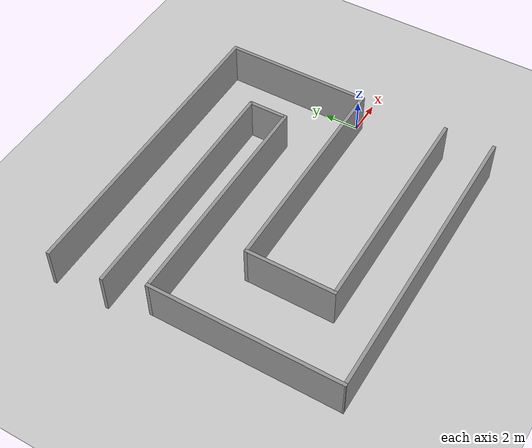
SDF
<sdf version="1.4">
 <world name="default">
  <light name="sun" type="directional">
   <pose>0 0 10 0 -0 0</pose>
   <diffuse>0.8 0.8 0.8 1</diffuse>
   <specular>0.2 0.2 0.2 1</specular>
   <attenuation>
    <range>1000</range>
    <constant>0.9</constant>
    <linear>0.01</linear>
    <quadratic>0.001</quadratic>
   </attenuation>
   <direction>-0.5 0.1 -0.9</direction>
  </light>
  <model name="ground_plane">
   <static>1</static>
   <link name="link">
    <collision name="collision">
     <geometry><plane><normal>0 0 1</normal><size>100 100</size></plane></geometry>
     <surface><friction><ode><mu>100</mu><mu2>50</mu2></ode></friction></surface>
    </collision>
    <visual name="visual">
     <cast_shadows>0</cast_shadows>
     <geometry><plane><normal>0 0 1</normal><size>100 100</size></plane></geometry>
     <material>
      <script><uri>file://media/materials/scripts/gazebo.material</uri><name>Gazebo/Grey</name></script>
     </material>
    </visual>
    <velocity_decay><linear>0</linear><angular>0</angular></velocity_decay>
   </link>
  </model>
  <physics type="ode">
   <max_step_size>0.001</max_step_size>
   <real_time_factor>1</real_time_factor>
   <real_time_update_rate>1000</real_time_update_rate>
   <gravity>0 0 -9.8</gravity>
  </physics>
  <scene><ambient>0.4 0.4 0.4 1</ambient><background>0.7 0.7 0.7 1</background><shadows>1</shadows></scene>
  <spherical_coordinates>
   <surface_model>EARTH_WGS84</surface_model>
   <latitude_deg>0</latitude_deg>
   <longitude_deg>0</longitude_deg>
   <elevation>0</elevation>
   <heading_deg>0</heading_deg>
  </spherical_coordinates>
  <model name="s_v3">
   <link name="Wall_0">
    <collision name="Wall_0_Collision">
     <geometry><box><size>17.7894 0.2 2.5</size></box></geometry>
     <pose>0 0 1.25 0 -0 0</pose>
    </collision>
    <visual name="Wall_0_Visual">
     <pose>0 0 1.25 0 -0 0</pose>
     <geometry><box><size>17.7894 0.2 2.5</size></box></geometry>
     <material>
      <script><uri>file://media/materials/scripts/gazebo.material</uri><name>Gazebo/Grey</name></script>
     </material>
    </visual>
    <velocity_decay><linear>0</linear><angular>0</angular></velocity_decay>
    <pose>-8.7366 8.26693 0 0 -0 0</pose>
   </link>
   <link name="Wall_1">
    <collision name="Wall_1_Collision">
     <geometry><box><size>8.6429 0.2 2.5</size></box></geometry>
     <pose>0 0 1.25 0 -0 0</pose>
    </collision>
    <visual name="Wall_1_Visual">
     <pose>0 0 1.25 0 -0 0</pose>
     <geometry><box><size>8.6429 0.2 2.5</size></box></geometry>
     <material>
      <script><uri>file://media/materials/scripts/gazebo.material</uri><name>Gazebo/Grey</name></script>
     </material>
    </visual>
    <velocity_decay><linear>0</linear><angular>0</angular></velocity_decay>
    <pose>0.058094 4.04548 0 0 0 -1.5708</pose>
   </link>
   <link name="Wall_10">
    <collision name="Wall_10_Collision">
     <geometry><box><size>17.1727 0.2 2.5</size></box></geometry>
     <pose>0 0 1.25 0 -0 0</pose>
    </collision>
    <visual name="Wall_10_Visual">
     <pose>0 0 1.25 0 -0 0</pose>
     <geometry><box><size>17.1727 0.2 2.5</size></box></geometry>
     <material>
      <script><uri>file://media/materials/scripts/gazebo.material</uri><name>Gazebo/Grey</name></script>
     </material>
    </visual>
    <velocity_decay><linear>0</linear><angular>0</angular></velocity_decay>
    <pose>-8.18353 -8.04802 0 0 0 -0.002384</pose>
   </link>
   <link name="Wall_2">
    <collision name="Wall_2_Collision">
     <geometry><box><size>12.7114 0.2 2.5</size></box></geometry>
     <pose>0 0 1.25 0 -0 0</pose>
    </collision>
    <visual name="Wall_2_Visual">
     <pose>0 0 1.25 0 -0 0</pose>
     <geometry><box><size>12.7114 0.2 2.5</size></box></geometry>
     <material>
      <script><uri>file://media/materials/scripts/gazebo.material</uri><name>Gazebo/Grey</name></script>
     </material>
    </visual>
    <velocity_decay><linear>0</linear><angular>0</angular></velocity_decay>
    <pose>-6.19761 -0.17597 0 0 -0 3.14159</pose>
   </link>
   <link name="Wall_3">
    <collision name="Wall_3_Collision">
     <geometry><box><size>5.24739 0.2 2.5</size></box></geometry>
     <pose>0 0 1.25 0 -0 0</pose>
    </collision>
    <visual name="Wall_3_Visual">
     <pose>0 0 1.25 0 -0 0</pose>
     <geometry><box><size>5.24739 0.2 2.5</size></box></geometry>
     <material>
      <script><uri>file://media/materials/scripts/gazebo.material</uri><name>Gazebo/Grey</name></script>
     </material>
    </visual>
    <velocity_decay><linear>0</linear><angular>0</angular></velocity_decay>
    <pose>-12.4533 -2.69966 0 0 0 -1.5708</pose>
   </link>
   <link name="Wall_4">
    <collision name="Wall_4_Collision">
     <geometry><box><size>12.8949 0.2 2.5</size></box></geometry>
     <pose>0 0 1.25 0 -0 0</pose>
    </collision>
    <visual name="Wall_4_Visual">
     <pose>0 0 1.25 0 -0 0</pose>
     <geometry><box><size>12.8949 0.2 2.5</size></box></geometry>
     <material>
      <script><uri>file://media/materials/scripts/gazebo.material</uri><name>Gazebo/Grey</name></script>
     </material>
    </visual>
    <velocity_decay><linear>0</linear><angular>0</angular></velocity_decay>
    <pose>-6.10584 -5.22336 0 0 -0 0</pose>
   </link>
   <link name="Wall_6">
    <collision name="Wall_6_Collision">
     <geometry><box><size>14.2548 0.2 2.5</size></box></geometry>
     <pose>0 0 1.25 0 -0 0</pose>
    </collision>
    <visual name="Wall_6_Visual">
     <pose>0 0 1.25 0 -0 0</pose>
     <geometry><box><size>14.2548 0.2 2.5</size></box></geometry>
     <material>
      <script><uri>file://media/materials/scripts/gazebo.material</uri><name>Gazebo/Grey</name></script>
     </material>
    </visual>
    <velocity_decay><linear>0</linear><angular>0</angular></velocity_decay>
    <pose>-10.4427 5.0446 0 0 -0 0.002878</pose>
   </link>
   <link name="Wall_7">
    <collision name="Wall_7_Collision">
     <geometry><box><size>2.4025 0.2 2.5</size></box></geometry>
     <pose>0 0 1.25 0 -0 0</pose>
    </collision>
    <visual name="Wall_7_Visual">
     <pose>0 0 1.25 0 -0 0</pose>
     <geometry><box><size>2.4025 0.2 2.5</size></box></geometry>
     <material>
      <script><uri>file://media/materials/scripts/gazebo.material</uri><name>Gazebo/Grey</name></script>
     </material>
    </visual>
    <velocity_decay><linear>0</linear><angular>0</angular></velocity_decay>
    <pose>-3.41535 3.96358 0 0 0 -1.5708</pose>
   </link>
   <link name="Wall_8">
    <collision name="Wall_8_Collision">
     <geometry><box><size>13.4546 0.2 2.5</size></box></geometry>
     <pose>0 0 1.25 0 -0 0</pose>
    </collision>
    <visual name="Wall_8_Visual">
     <pose>0 0 1.25 0 -0 0</pose>
     <geometry><box><size>13.4546 0.2 2.5</size></box></geometry>
     <material>
      <script><uri>file://media/materials/scripts/gazebo.material</uri><name>Gazebo/Grey</name></script>
     </material>
    </visual>
    <velocity_decay><linear>0</linear><angular>0</angular></velocity_decay>
    <pose>-10.0426 2.86233 0 0 -0 3.14159</pose>
   </link>
   <link name="Wall_9">
    <collision name="Wall_9_Collision">
     <geometry><box><size>11.0901 0.2 2.5</size></box></geometry>
     <pose>0 0 1.25 0 -0 0</pose>
    </collision>
    <visual name="Wall_9_Visual">
     <pose>0 0 1.25 0 -0 0</pose>
     <geometry><box><size>11.0901 0.2 2.5</size></box></geometry>
     <material>
      <script><uri>file://media/materials/scripts/gazebo.material</uri><name>Gazebo/Grey</name></script>
     </material>
    </visual>
    <velocity_decay><linear>0</linear><angular>0</angular></velocity_decay>
    <pose>-16.6699 -2.58273 0 0 0 -1.5708</pose>
   </link>
   <static>1</static>
  </model>
 </world>
</sdf>
